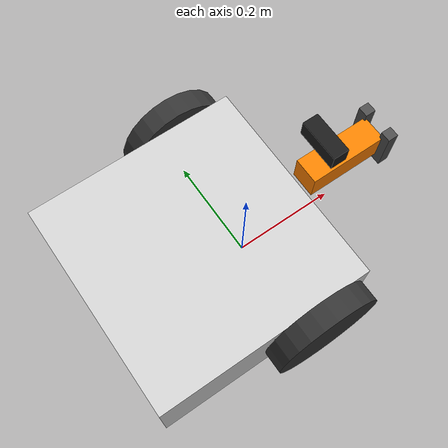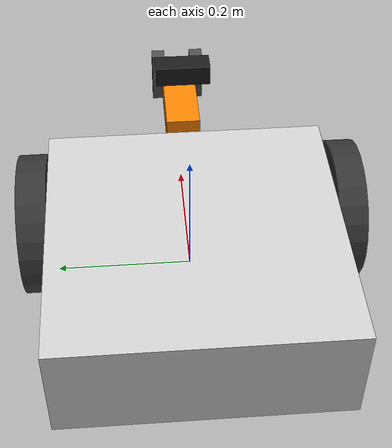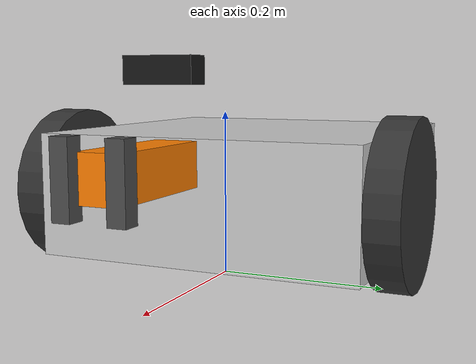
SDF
<?xml version="1.0" ?>
<sdf version="1.8">
    <model name='courier_robot'>
        <pose>0 0 0.1 0 0 0</pose>
        <link name='chassis'>
            <pose>-0.1 0 0 0 0 0</pose>
            <inertial>
                <mass>1.14395</mass>
                <inertia>
                    <ixx>0.095329</ixx> <ixy>0</ixy> <ixz>0</ixz>
                    <iyy>0.381317</iyy> <iyz>0</iyz> <izz>0.476646</izz>
                </inertia>
            </inertial>
            <visual name='visual'>
                <geometry><box><size>0.4 0.4 0.15</size></box></geometry>
                <material><ambient>0.8 0.8 0.8 1</ambient><diffuse>0.8 0.8 0.8 1</diffuse></material>
            </visual>
            <collision name='collision'>
                <geometry><box><size>0.4 0.4 0.15</size></box></geometry>
            </collision>
        </link>

        <link name='left_wheel'>
            <pose>0 0.22 0 -1.5707 0 0</pose>
            <inertial>
                <mass>1</mass>
                <inertia>
                    <ixx>0.043333</ixx> <ixy>0</ixy> <ixz>0</ixz>
                    <iyy>0.043333</iyy> <iyz>0</iyz> <izz>0.08</izz>
                </inertia>
            </inertial>
            <visual name='visual'>
                <geometry><cylinder><radius>0.1</radius><length>0.04</length></cylinder></geometry>
                <material><ambient>0.2 0.2 0.2 1</ambient><diffuse>0.2 0.2 0.2 1</diffuse></material>
            </visual>
            <collision name='collision'>
                <geometry><cylinder><radius>0.1</radius><length>0.04</length></cylinder></geometry>
            </collision>
        </link>

        <link name='right_wheel'>
            <pose>0 -0.22 0 -1.5707 0 0</pose>
            <inertial>
                <mass>1</mass>
                <inertia>
                    <ixx>0.043333</ixx> <ixy>0</ixy> <ixz>0</ixz>
                    <iyy>0.043333</iyy> <iyz>0</iyz> <izz>0.08</izz>
                </inertia>
            </inertial>
            <visual name='visual'>
                <geometry><cylinder><radius>0.1</radius><length>0.04</length></cylinder></geometry>
                <material><ambient>0.2 0.2 0.2 1</ambient><diffuse>0.2 0.2 0.2 1</diffuse></material>
            </visual>
            <collision name='collision'>
                <geometry><cylinder><radius>0.1</radius><length>0.04</length></cylinder></geometry>
            </collision>
        </link>

        <joint name='left_wheel_joint' type='revolute'>
            <parent>chassis</parent>
            <child>left_wheel</child>
            <axis><xyz>0 0 1</xyz></axis>
        </joint>
        <joint name='right_wheel_joint' type='revolute'>
            <parent>chassis</parent>
            <child>right_wheel</child>
            <axis><xyz>0 0 1</xyz></axis>
        </joint>

        <link name='caster'>
            <pose>-0.3 0 -0.05 0 0 0</pose>
            <collision name='collision'><geometry><sphere><radius>0.05</radius></sphere></geometry></collision>
        </link>
        <joint name='caster_wheel' type='ball'>
            <parent>chassis</parent>
            <child>caster</child>
        </joint>

        <!-- IMU Sensor -->
        <link name='imu_link'>
            <pose>0 0 0.1 0 0 0</pose>
            <inertial>
                <mass>0.01</mass>
                <inertia>
                    <ixx>0.0001</ixx> <ixy>0</ixy> <ixz>0</ixz>
                    <iyy>0.0001</iyy> <iyz>0</iyz> <izz>0.0001</izz>
                </inertia>
            </inertial>
            <sensor name='imu_sensor' type='imu'>
                <always_on>1</always_on>
                <update_rate>100</update_rate>
                <imu>
                    <angular_velocity>
                        <x><noise type="gaussian"><mean>0</mean><stddev>0.009</stddev></noise></x>
                        <y><noise type="gaussian"><mean>0</mean><stddev>0.009</stddev></noise></y>
                        <z><noise type="gaussian"><mean>0</mean><stddev>0.009</stddev></noise></z>
                    </angular_velocity>
                    <linear_acceleration>
                        <x><noise type="gaussian"><mean>0</mean><stddev>0.017</stddev></noise></x>
                        <y><noise type="gaussian"><mean>0</mean><stddev>0.017</stddev></noise></y>
                        <z><noise type="gaussian"><mean>0</mean><stddev>0.017</stddev></noise></z>
                    </linear_acceleration>
                </imu>
                <topic>imu</topic>
            </sensor>
        </link>
        <joint name='imu_joint' type='fixed'>
            <parent>chassis</parent>
            <child>imu_link</child>
        </joint>

        <!-- Gripper/Arm -->
        <link name='gripper'>
            <pose>0.2 0 0.05 0 0 0</pose>
            <inertial>
                <mass>0.1</mass>
                <inertia>
                    <ixx>0.0001</ixx> <ixy>0</ixy> <ixz>0</ixz>
                    <iyy>0.0001</iyy> <iyz>0</iyz> <izz>0.0001</izz>
                </inertia>
            </inertial>
            <visual name='arm_visual'>
                <geometry><box><size>0.15 0.05 0.05</size></box></geometry>
                <material><ambient>1 0.5 0 1</ambient><diffuse>1 0.5 0 1</diffuse></material>
            </visual>
            <visual name='gripper_left'>
                <pose>0.08 0.03 0 0 0 0</pose>
                <geometry><box><size>0.02 0.02 0.08</size></box></geometry>
                <material><ambient>0.3 0.3 0.3 1</ambient><diffuse>0.3 0.3 0.3 1</diffuse></material>
            </visual>
            <visual name='gripper_right'>
                <pose>0.08 -0.03 0 0 0 0</pose>
                <geometry><box><size>0.02 0.02 0.08</size></box></geometry>
                <material><ambient>0.3 0.3 0.3 1</ambient><diffuse>0.3 0.3 0.3 1</diffuse></material>
            </visual>
        </link>
        <joint name='gripper_joint' type='fixed'>
            <parent>chassis</parent>
            <child>gripper</child>
        </joint>

        <!-- Camera for AprilTag detection -->
        <link name='camera_link'>
            <pose>0.15 0 0.15 0 0 0</pose>
            <inertial>
                <mass>0.05</mass>
                <inertia>
                    <ixx>0.0001</ixx> <ixy>0</ixy> <ixz>0</ixz>
                    <iyy>0.0001</iyy> <iyz>0</iyz> <izz>0.0001</izz>
                </inertia>
            </inertial>
            <visual name='camera_visual'>
                <geometry><box><size>0.03 0.08 0.03</size></box></geometry>
                <material><ambient>0.1 0.1 0.1 1</ambient><diffuse>0.1 0.1 0.1 1</diffuse></material>
            </visual>
            <sensor name='camera' type='camera'>
                <update_rate>30</update_rate>
                <camera>
                    <horizontal_fov>1.047</horizontal_fov>
                    <image>
                        <width>640</width>
                        <height>480</height>
                    </image>
                    <clip>
                        <near>0.1</near>
                        <far>10</far>
                    </clip>
                </camera>
                <always_on>1</always_on>
                <visualize>true</visualize>
                <topic>camera</topic>
            </sensor>
        </link>
        <joint name='camera_joint' type='fixed'>
            <parent>chassis</parent>
            <child>camera_link</child>
        </joint>

        <plugin filename="gz-sim-diff-drive-system" name="gz::sim::systems::DiffDrive">
            <left_joint>left_wheel_joint</left_joint>
            <right_joint>right_wheel_joint</right_joint>
            <wheel_separation>0.44</wheel_separation>
            <wheel_radius>0.1</wheel_radius>
            <topic>cmd_vel</topic>
            <odom_topic>odom</odom_topic>
            <tf_topic>tf</tf_topic>
            <frame_id>odom</frame_id>
            <child_frame_id>base_link</child_frame_id>
        </plugin>
    </model>
</sdf>
